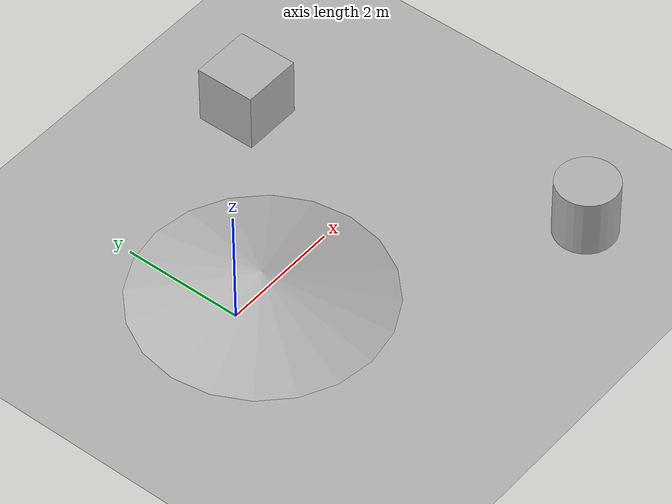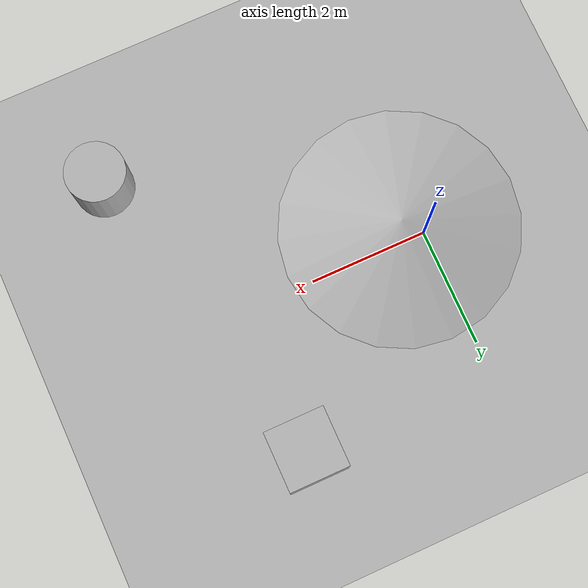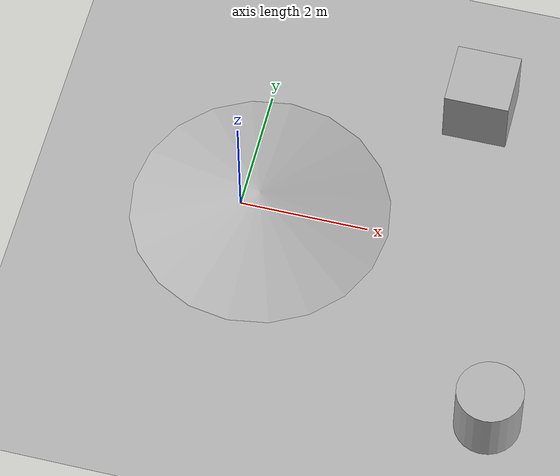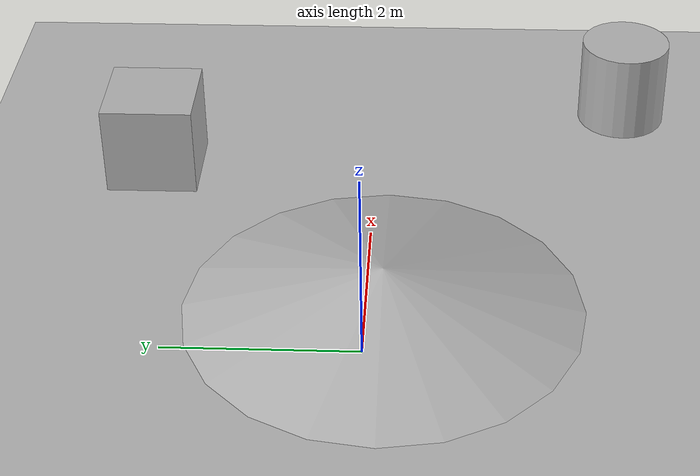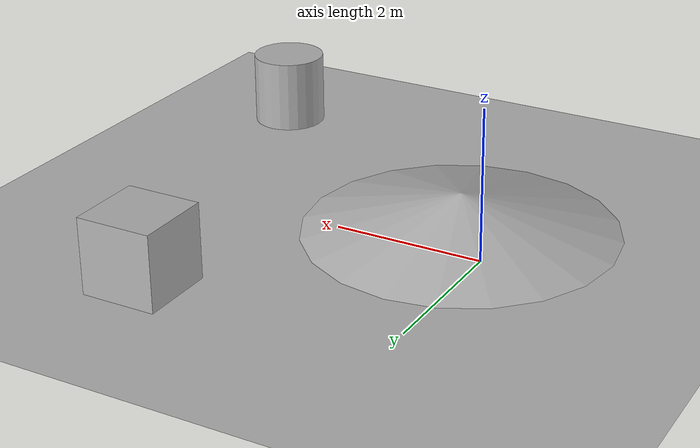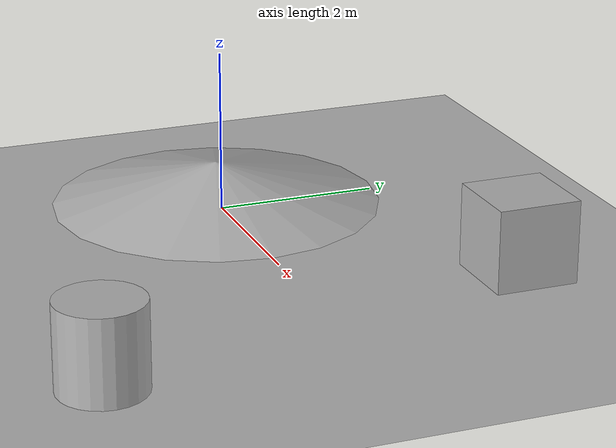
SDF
<?xml version="1.0" encoding='ASCII'?>
<sdf version='1.7'>
    <world name='simple'>
    <physics type="ode">
      <max_step_size>0.003</max_step_size>
      <real_time_factor>1.0</real_time_factor>
    </physics>
    <plugin name='ignition::gazebo::systems::Physics' filename='libignition-gazebo-physics-system.so'/>
    <plugin name="ignition::gazebo::systems::Sensors" filename="libignition-gazebo-sensors-system.so">
      <render_engine>ogre2</render_engine>
    </plugin>
    <plugin name='ignition::gazebo::systems::UserCommands' filename='libignition-gazebo-user-commands-system.so'/>
    <plugin name='ignition::gazebo::systems::SceneBroadcaster' filename='libignition-gazebo-scene-broadcaster-system.so'/>
    <plugin name="ignition::gazebo::systems::Imu" filename="libignition-gazebo-imu-system.so"/>
    <plugin name="ignition::gazebo::systems::NavSat" filename="libignition-gazebo-navsat-system.so"/>

    <gui fullscreen="0">
    </gui>

    <light type="directional" name="sun">
      <cast_shadows>true</cast_shadows>
      <pose>0 0 10 0 0 0</pose>
      <diffuse>0.8 0.8 0.8 1</diffuse>
      <specular>0.2 0.2 0.2 1</specular>
      <attenuation>
        <range>1000</range>
        <constant>0.9</constant>
        <linear>0.01</linear>
        <quadratic>0.001</quadratic>
      </attenuation>
      <direction>-0.5 0.1 -0.9</direction>
    </light>

    <spherical_coordinates>
      <surface_model>EARTH_WGS84</surface_model>
      <world_frame_orientation>ENU</world_frame_orientation>
      <latitude_deg>52.41516780808094</latitude_deg>
      <longitude_deg>-4.065390697470451</longitude_deg>
      <elevation>0</elevation>
      <heading_deg>0</heading_deg>
    </spherical_coordinates>

    <model name='ground_plane'>
      <static>true</static>
      <link name='link'>
        <visual name='ground_visual'>
          <geometry>
            <plane>
              <normal>0.0 0.0 1</normal>
              <size>1 1</size>
            </plane>
          </geometry>
          <material>
            <ambient>1.0000000 0.7000000 0.0000000 1</ambient>
            <diffuse>0.699999988 0.699999988 0.699999988 1</diffuse>
            <specular>1 1 1 1</specular>
          </material>
        <plugin
          filename="ignition-gazebo-thermal-system"
          name="gz::sim::systems::Thermal">
          <temperature>150.0</temperature>
        </plugin>
        </visual>
        <collision name='collision'>
          <geometry>
            <plane>
              <normal>0.0 0.0 1</normal>
              <size>1 1</size>
            </plane>
          </geometry>
        </collision>
      </link>
      <pose>0 0 0 0 0 0</pose>
    </model>

    <model name='box'>
      <pose>3.2276835542251892 2.4743622511123462 0.49999999911798237 1.5363336224756932e-20 -1.2574342005325274e-20 1.3847431932731033e-21</pose>
      <link name='box_link'>
        <inertial>
          <inertia>
            <ixx>0.16666</ixx>
            <ixy>0</ixy>
            <ixz>0</ixz>
            <iyy>0.16666</iyy>
            <iyz>0</iyz>
            <izz>0.16666</izz>
          </inertia>
          <mass>1</mass>
          <pose>0 0 0 0 0 0</pose>
        </inertial>
        <collision name='box_collision'>
          <geometry>
            <box>
              <size>1 1 1</size>
            </box>
          </geometry>
          <surface>
            <friction>
              <ode/>
            </friction>
            <bounce/>
            <contact/>
          </surface>
        </collision>
        <visual name='box_visual'>
          <geometry>
            <box>
              <size>1 1 1</size>
            </box>
          </geometry>
          <material>
            <ambient>0.300000012 0.300000012 0.300000012 1</ambient>
            <diffuse>0.699999988 0.699999988 0.699999988 1</diffuse>
            <specular>1 1 1 1</specular>
          </material>
        <plugin
          filename="ignition-gazebo-thermal-system"
          name="gz::sim::systems::Thermal">
          <temperature>250.0</temperature>
        </plugin>
        </visual>
        <pose>0 0 0 0 0 0</pose>
        <enable_wind>false</enable_wind>
      </link>
      <static>false</static>
      <self_collide>false</self_collide>
    </model>

    <model name='cone'>
      <pose>0.3622145278349978 -0.19764579394416407 0.49999999939670808 4.7284439492354262e-16 -6.941955692965863e-09 -1.1513732602667632e-21</pose>
      <link name='cone_link'>
        <inertial>
          <inertia>
            <ixx>0.074999999999999997</ixx>
            <ixy>0</ixy>
            <ixz>0</ixz>
            <iyy>0.074999999999999997</iyy>
            <iyz>0</iyz>
            <izz>0.074999999999999997</izz>
          </inertia>
          <mass>1</mass>
          <pose>0 0 0 0 0 0</pose>
        </inertial>
        <collision name='cone_collision'>
          <geometry>
            <cone>
              <radius>2.0</radius>
              <length>0.5</length>
            </cone>
          </geometry>
          <surface>
            <friction>
              <ode/>
            </friction>
            <bounce/>
            <contact/>
          </surface>
        </collision>
        <visual name='cone_visual'>
          <geometry>
            <cone>
              <radius>2.0</radius>
              <length>0.5</length>
            </cone>
          </geometry>
          <material>
            <ambient>0.300000012 0.300000012 0.300000012 1</ambient>
            <diffuse>0.699999988 0.699999988 0.699999988 1</diffuse>
            <specular>1 1 1 1</specular>
          </material>
        <plugin
          filename="ignition-gazebo-thermal-system"
          name="gz::sim::systems::Thermal">
          <temperature>200.0</temperature>
        </plugin>
        </visual>
        <pose>0 0 0 0 0 0</pose>
        <enable_wind>false</enable_wind>
      </link>
      <static>false</static>
      <self_collide>false</self_collide>
    </model>

    <model name='cylinder'>
      <pose>4.4880922012518338 -2.865885800322781 0.49999957929137095 -2.2501499895450368e-18 -2.5042510599193332e-18 2.2469815702881624e-20</pose>
      <link name='cylinder_link'>
        <inertial>
          <inertia>
            <ixx>0.14580000000000001</ixx>
            <ixy>0</ixy>
            <ixz>0</ixz>
            <iyy>0.14580000000000001</iyy>
            <iyz>0</iyz>
            <izz>0.125</izz>
          </inertia>
          <mass>1</mass>
          <pose>0 0 0 0 0 0</pose>
        </inertial>
        <collision name='cylinder_collision'>
          <geometry>
            <cylinder>
              <radius>0.5</radius>
              <length>1</length>
            </cylinder>
          </geometry>
          <surface>
            <friction>
              <ode/>
            </friction>
            <bounce/>
            <contact/>
          </surface>
        </collision>
        <visual name='cylinder_visual'>
          <geometry>
            <cylinder>
              <radius>0.5</radius>
              <length>1</length>
            </cylinder>
          </geometry>
          <material>
            <ambient>0.300000012 0.300000012 0.300000012 1</ambient>
            <diffuse>0.699999988 0.699999988 0.699999988 1</diffuse>
            <specular>1 1 1 1</specular>
          </material>
        <plugin
          filename="ignition-gazebo-thermal-system"
          name="gz::sim::systems::Thermal">
          <temperature>300.0</temperature>
        </plugin>
        </visual>
        <pose>0 0 0 0 0 0</pose>
        <enable_wind>false</enable_wind>
      </link>
      <static>false</static>
      <self_collide>false</self_collide>
    </model>

  </world>
</sdf>
